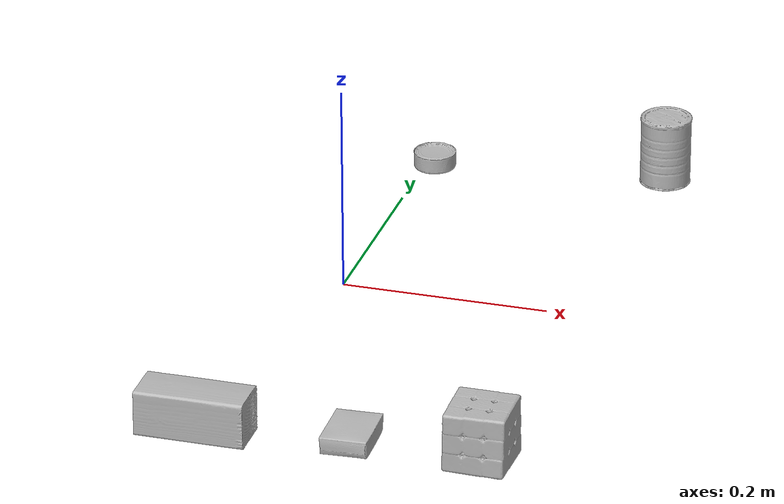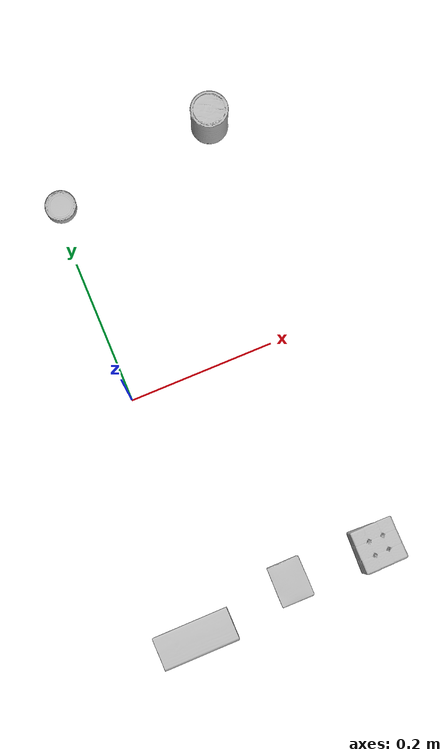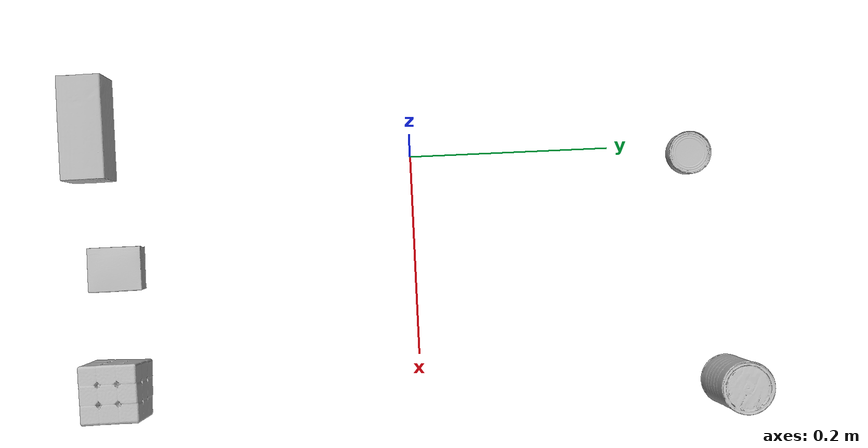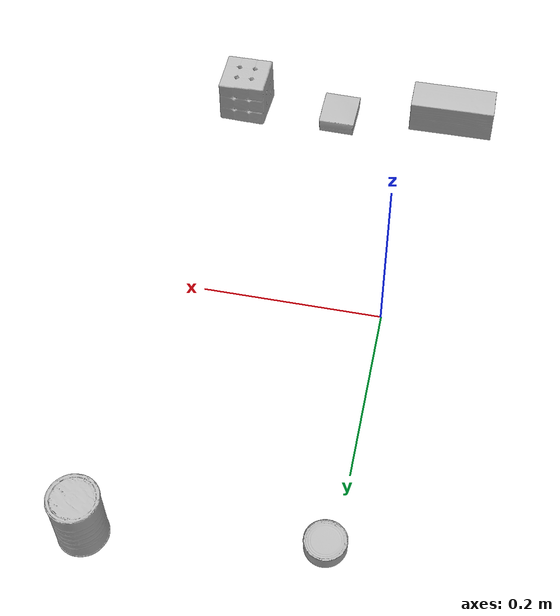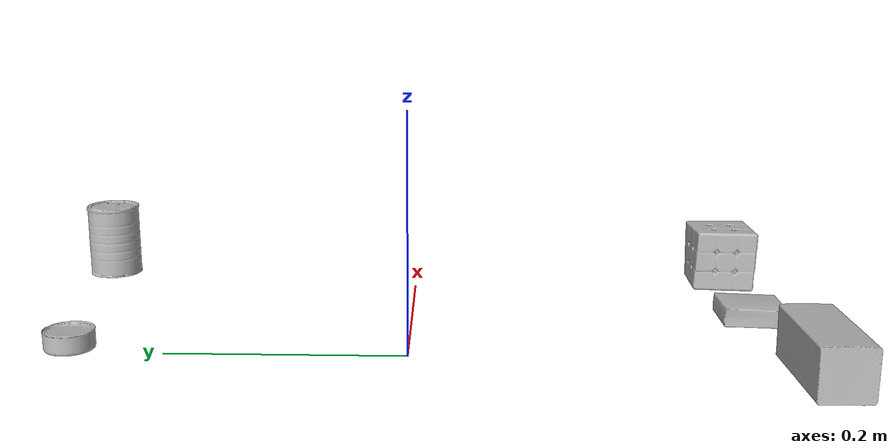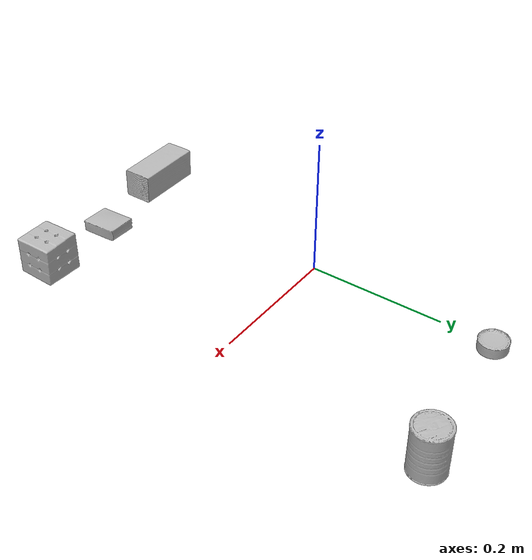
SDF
<?xml version="1.0" ?>
<sdf version="1.4">
  <world name="default">
    <light name="light1" type="point">
      <pose>0 0 1 0 0 0</pose>
      <diffuse>3 3 3 1</diffuse>
      <specular>3 3 3 1</specular>
    </light>
    <light name="light2" type="point">
      <pose>0 0.5 2 0 0 0</pose>
      <diffuse>1 1 1 1</diffuse>
      <specular>1 1 1 1</specular>
    </light>
    <light name="light3" type="point">
      <pose>0 0.5 2 0 0 0</pose>
      <diffuse>3 3 3 1</diffuse>
      <specular>3 3 3 1</specular>
    </light>
    <scene>
      <ambient>0.7 0.7 0.7</ambient>
    </scene>
    <model name="box1">
      <link name="link_box1">
        <collision name="default">
          <geometry>
            <mesh>
              <uri>model://rubiks_cube/collision_meshes/collision.obj</uri>
              <scale>1.0 1.0 1.0</scale>
            </mesh>
          </geometry>
          <surface>
            <friction>
              <ode>
                <mu>0.5</mu>
                <mu2>0.5</mu2>
              </ode>
            </friction>
          </surface>
        </collision>
        <visual name="default">
          <geometry>
            <mesh>
              <uri>model://rubiks_cube/visual_meshes/visual.dae</uri>
              <scale>1.0 1.0 1.0</scale>
            </mesh>
          </geometry>
        </visual>
        <inertial>
          <mass>0.19534927606582642</mass>
          <pose>2.6721041649580002e-05 5.256967051536776e-05 -7.264316082000732e-06 -0.05467254413799041 -0.09813991388320625 -0.034457004790174134</pose>
          <inertia>
            <ixx>0.0001079436</ixx>
            <iyy>0.00010744019</iyy>
            <izz>0.000108838074</izz>
            <ixy>0</ixy>
            <ixz>0</ixz>
            <iyz>0</iyz>
          </inertia>
        </inertial>
      </link>
      <pose>0.219931498169899 -0.30022746324539185 0.028679009526968002 -3.317835925740993e-08 1.8510040252014954e-08 3.790482423753763e-07</pose>
    </model>
    <model name="box2">
      <link name="link_box2">
        <collision name="default">
          <geometry>
            <mesh>
              <uri>model://pudding_box/collision_meshes/collision.obj</uri>
              <scale>0.5 0.5 0.5</scale>
            </mesh>
          </geometry>
          <surface>
            <friction>
              <ode>
                <mu>0.5</mu>
                <mu2>0.5</mu2>
              </ode>
            </friction>
          </surface>
        </collision>
        <visual name="default">
          <geometry>
            <mesh>
              <uri>model://pudding_box/visual_meshes/visual.dae</uri>
              <scale>0.5 0.5 0.5</scale>
            </mesh>
          </geometry>
        </visual>
        <inertial>
          <mass>0.04727919027209282</mass>
          <pose>0.00024474109522998333 0.00040339428232982755 -0.0002594413817860186 0.0052131013240192415 -0.0066037977924420415 0.020079828889419827</pose>
          <inertia>
            <ixx>1.3361672e-05</ixx>
            <iyy>8.9898285e-06</iyy>
            <izz>1.9732002e-05</izz>
            <ixy>0</ixy>
            <ixz>0</ixz>
            <iyz>0</iyz>
          </inertia>
        </inertial>
      </link>
      <pose>0.09974134713411331 -0.3002520799636841 0.009862901642918587 0.022348690049265055 -0.011391611208534954 -9.429408098291985e-05</pose>
    </model>
    <model name="box3">
      <link name="link_box3">
        <collision name="default">
          <geometry>
            <mesh>
              <uri>model://wood_block/collision_meshes/collision.obj</uri>
              <scale>0.5 0.5 0.5</scale>
            </mesh>
          </geometry>
          <surface>
            <friction>
              <ode>
                <mu>0.5</mu>
                <mu2>0.5</mu2>
              </ode>
            </friction>
          </surface>
        </collision>
        <visual name="default">
          <geometry>
            <mesh>
              <uri>model://wood_block/visual_meshes/visual.dae</uri>
              <scale>0.5 0.5 0.5</scale>
            </mesh>
          </geometry>
        </visual>
        <inertial>
          <mass>0.3041442632675171</mass>
          <pose>-2.9066577553749084e-06 -0.000285404734313488 0.00013204291462898254 -0.05220823380361383 -0.0051926957206686235 -0.0068613778665259926</pose>
          <inertia>
            <ixx>0.00010174775</ixx>
            <iyy>0.0003214212</iyy>
            <izz>0.0003202189</izz>
            <ixy>0</ixy>
            <ixz>0</ixz>
            <iyz>0</iyz>
          </inertia>
        </inertial>
      </link>
      <pose>-0.040058307349681854 -0.31943437457084656 0.022629261016845703 -0.005208549846197815 0.005718691673485798 0.0053044036232820935</pose>
    </model>
    <model name="can1">
      <link name="link_can1">
        <collision name="default">
          <geometry>
            <mesh>
              <uri>model://master_chef_can/collision_meshes/collision.obj</uri>
              <scale>0.5 0.5 0.5</scale>
            </mesh>
          </geometry>
          <surface>
            <friction>
              <ode>
                <mu>0.5</mu>
                <mu2>0.5</mu2>
              </ode>
            </friction>
          </surface>
        </collision>
        <visual name="default">
          <geometry>
            <mesh>
              <uri>model://master_chef_can/visual_meshes/visual.dae</uri>
              <scale>0.5 0.5 0.5</scale>
            </mesh>
          </geometry>
        </visual>
        <inertial>
          <mass>0.18719419836997986</mass>
          <pose>-4.661963976104744e-05 1.3926856468060578e-07 -5.0798327720258385e-05 -0.0017995099067415357 0.0006479319374111454 -0.6102582770449616</pose>
          <inertia>
            <ixx>0.0001098703</ixx>
            <iyy>0.00010906167</iyy>
            <izz>6.071174e-05</izz>
            <ixy>0</ixy>
            <ixz>0</ixz>
            <iyz>0</iyz>
          </inertia>
        </inertial>
      </link>
      <pose>0.24012219905853271 0.3100842833518982 0.03530198335647583 -1.410342035924091e-06 -7.588828760626761e-07 -8.329448541460855e-07</pose>
    </model>
    <model name="can2">
      <link name="link_can2">
        <collision name="default">
          <geometry>
            <mesh>
              <uri>model://tuna_fish_can/collision_meshes/collision.obj</uri>
              <scale>0.5 0.5 0.5</scale>
            </mesh>
          </geometry>
          <surface>
            <friction>
              <ode>
                <mu>0.5</mu>
                <mu2>0.5</mu2>
              </ode>
            </friction>
          </surface>
        </collision>
        <visual name="default">
          <geometry>
            <mesh>
              <uri>model://tuna_fish_can/visual_meshes/visual.dae</uri>
              <scale>0.5 0.5 0.5</scale>
            </mesh>
          </geometry>
        </visual>
        <inertial>
          <mass>0.011327341198921204</mass>
          <pose>-2.0361354472697712e-05 -7.256336175487377e-06 -0.0005269023822620511 -0.001794480782384504 0.00017159763230480823 0.24052991368062646</pose>
          <inertia>
            <ixx>1.5314733e-06</ixx>
            <iyy>1.52509e-06</iyy>
            <izz>2.6205691e-06</izz>
            <ixy>0</ixy>
            <ixz>0</ixz>
            <iyz>0</iyz>
          </inertia>
        </inertial>
      </link>
      <pose>0.00997498631477356 0.2800227403640747 0.008520001545548439 -7.446032235810165e-09 7.843481373044282e-09 -7.98297588603101e-12</pose>
    </model>
  </world>
</sdf>
